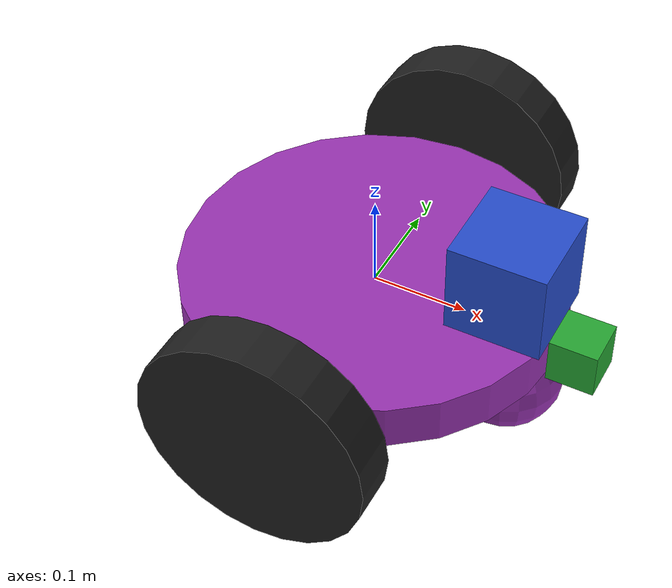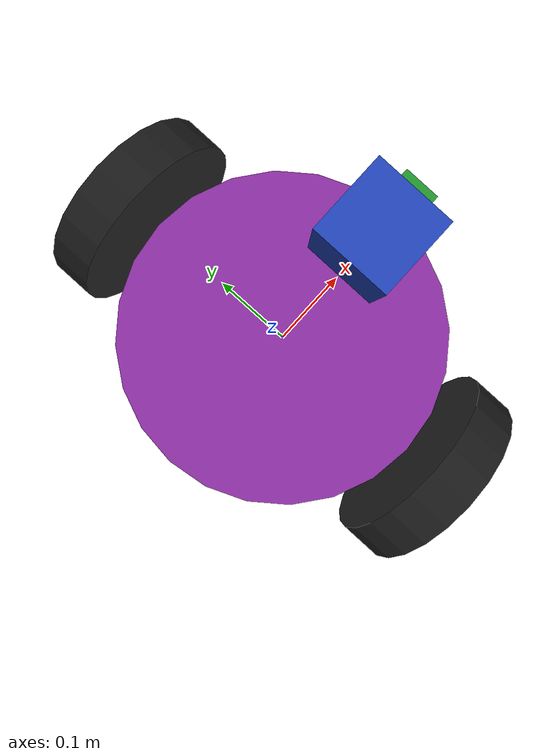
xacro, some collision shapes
<?xml version='1.0'?>

<robot name="my_robot" xmlns:xacro="http://www.ros.org/wiki/xacro">

  <!-- import plugin -->
  <xacro:include filename="$(find my_robot)/urdf/my_robot.gazebo" />

  <link name="robot_footprint"></link>

  <joint name="robot_footprint_joint" type="fixed">
    <origin xyz="0 0 0" rpy="0 0 0" />
    <parent link="robot_footprint"/>
    <child link="chassis" />
  </joint>

  <link name='chassis'>
    <pose>0 0 0.1 0 0 0</pose>

    <inertial>
      <mass value="15.0"/>
      <origin xyz="0.0 0 0" rpy=" 0 0 0"/>
      <inertia
          ixx="0.1" ixy="0" ixz="0"
          iyy="0.1" iyz="0"
          izz="0.1"
      />
    </inertial>

    <collision name='collision'>
      <origin xyz="0 0 0" rpy=" 0 0 0"/>
      <geometry>
        <cylinder radius="0.2" length = "0.05"/>
      </geometry>
    </collision>

    <visual name='chassis_visual'>
      <origin xyz="0 0 0" rpy=" 0 0 0"/>
      <geometry>
        <cylinder radius="0.2" length = "0.05"/>
      </geometry>
    </visual>

    <collision name='back_caster_collision'>
      <origin xyz="-0.15 0 -0.06" rpy=" 0 0 0"/>
      <geometry>
        <sphere radius="0.059"/>
      </geometry>
    </collision>

    <visual name='back_caster_visual'>
      <origin xyz="-0.15 0 -0.06" rpy=" 0 0 0"/>
      <geometry>
        <sphere radius="0.059"/>
      </geometry>
    </visual>

    <collision name='front_caster_collision'>
      <origin xyz="0.15 0 -0.06" rpy=" 0 0 0"/>
      <geometry>
        <sphere radius="0.06"/>
      </geometry>
    </collision>

    <visual name='front_caster_visual'>
      <origin xyz="0.15 0 -0.06" rpy=" 0 0 0"/>
      <geometry>
        <sphere radius="0.06"/>
      </geometry>
    </visual>

  </link>

  <link name='left_wheel'>
    <pose>0 0 0.1 0 0 0</pose>

    <inertial>
      <mass value="15.0"/>
      <origin xyz="0.0 0 0" rpy=" 0 0 0"/>
      <inertia
          ixx="0.1" ixy="0" ixz="0"
          iyy="0.1" iyz="0"
          izz="0.1"
      />
    </inertial>

    <collision name='left_wheel_collision'>
      <origin xyz="0 0 0" rpy=" 0 1.5707 1.5707"/>
      <geometry>
        <cylinder radius="0.12" length = "0.05"/>
      </geometry>
    </collision>

    <visual name='left_wheel_visual'>
      <origin xyz="0.0 0 0" rpy=" 0 1.5707 1.5707"/>
      <geometry>
        <cylinder radius="0.12" length = "0.05"/>
      </geometry>
    </visual>

  </link>

  <joint type="continuous" name="left_wheel_hinge">
    <origin xyz="0 0.23 0" rpy="0 0 0"/>
    <child link="left_wheel"/>
    <parent link="chassis"/>
    <axis xyz="0 1 0" rpy="0 0 0"/>
    <limit effort="10000" velocity="1000"/>
    <dynamics damping="1.0" friction="1.0"/>
  </joint>

  <link name='right_wheel'>
    <pose>0 0 0.1 0 0 0</pose>

    <inertial>
      <mass value="15.0"/>
      <origin xyz="0.0 0 0" rpy=" 0 0 0"/>
      <inertia
          ixx="0.1" ixy="0" ixz="0"
          iyy="0.1" iyz="0"
          izz="0.1"
      />
    </inertial>

    <collision name='right_wheel_collision'>
      <origin xyz="0 0 0" rpy=" 0 1.5707 1.5707"/>
      <geometry>
        <cylinder radius="0.12" length = "0.05"/>
      </geometry>
    </collision>

    <visual name='right_wheel_visual'>
      <origin xyz="0.0 0 0" rpy=" 0 1.5707 1.5707"/>
      <geometry>
        <cylinder radius="0.12" length = "0.05"/>
      </geometry>
    </visual>

  </link>

  <joint type="continuous" name="right_wheel_hinge">
    <origin xyz="0 -0.23 0" rpy="0 0 0"/>
    <child link="right_wheel"/>
    <parent link="chassis"/>
    <axis xyz="0 1 0" rpy="0 0 0"/>
    <limit effort="10000" velocity="1000"/>
    <dynamics damping="1.0" friction="1.0"/>
  </joint>

  <link name='camera'>
    <pose>0 0 0.1 0 0 0</pose>

    <inertial>
      <mass value=".1"/>
      <origin xyz="0 0 0" rpy=" 0 0 0"/>
      <inertia
          ixx="1e-6" ixy="0" ixz="0"
          iyy="1e-6" iyz="0"
          izz="1e-6"
      />
    </inertial>

    <collision name='camera_collision'>
      <origin xyz="0 0 0" rpy=" 0 0 0"/>
      <geometry>
        <box size=".05 .05 .05"/>
      </geometry>
    </collision>

    <visual name='camera_visual'>
      <origin xyz="0 0 0" rpy=" 0 0 0"/>
      <geometry>
        <box size=".05 .05 .05"/>
      </geometry>
    </visual>

  </link>

  <joint type="fixed" name="camera_joint">
    <origin xyz="0.225 0 0" rpy="0 0 0"/>
    <child link="camera"/>
    <parent link="chassis"/>
    <axis xyz="0 1 0" rpy="0 0 0"/>
    <limit effort="10000" velocity="1000"/>
    <dynamics damping="1.0" friction="1.0"/>
  </joint>

  <joint name="camera_optical_joint" type="fixed">
    <origin xyz="0 0 0" rpy="-1.5707 0 -1.5707"/>
    <parent link="camera"/>
    <child link="camera_link_optical"/>
  </joint>

  <link name="camera_link_optical">
  </link>

  <link name='hokuyo'>
    <pose>0 0 0.1 0 0 0</pose>

    <inertial>
      <mass value="1e-5"/>
      <origin xyz="0 0 0" rpy=" 0 0 0"/>
      <inertia
          ixx="1e-6" ixy="0" ixz="0"
          iyy="1e-6" iyz="0"
          izz="1e-6"
      />
    </inertial>

    <collision name='hokuyo_collision'>
      <origin xyz="0 0 0" rpy=" 0 0 0"/>
      <geometry>
        <box size=".1 .1 .1"/>
      </geometry>
    </collision>

    <visual name= 'hokuyo_visual'>
      <origin xyz="0 0 0" rpy=" 0 0 0"/>
      <geometry>
        <mesh filename="package://my_robot/meshes/hokuyo.dae"/>
      </geometry>
    </visual>

  </link>

  <joint type="fixed" name="hokuyo_joint">
    <origin xyz="0.15 0 0.075" rpy="0 0 0"/>
    <child link="hokuyo"/>
    <parent link="chassis"/>
    <axis xyz="0 1 0" rpy="0 0 0"/>

  </joint>

  <gazebo reference="chassis">
    <material>Gazebo/Purple</material>
  </gazebo>

  <gazebo reference="camera">
    <material>Gazebo/Green</material>
  </gazebo>

  <gazebo reference="hokuyo">
    <material>Gazebo/Blue</material>
  </gazebo>
  <gazebo reference="left_wheel">
    <material>Gazebo/Black</material>
  </gazebo>
  <gazebo reference="right_wheel">
    <material>Gazebo/Black</material>
  </gazebo>

</robot>
